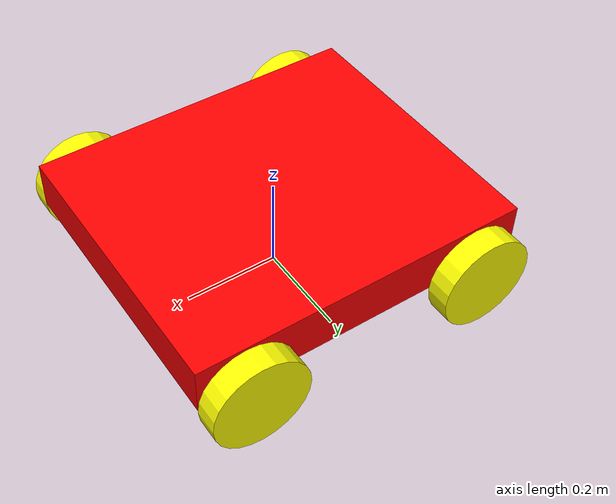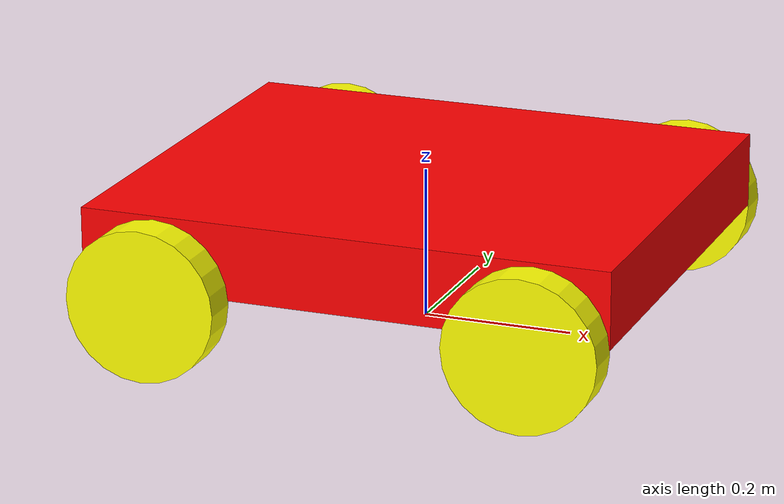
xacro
<?xml version="1.0"?>
<robot xmlns:xacro="http://www.ros.org/wiki/xacro">

    <xacro:include filename="inertial_macros.xacro"/>

    <material name="white">
        <color rgba="1 1 1 1" />
    </material>

    <material name="orange">
        <color rgba="1 0.3 0.1 1"/>
    </material>

    <material name="blue">
        <color rgba="0.2 0.2 1 1"/>
    </material>

    <material name="black">
        <color rgba="0 0 0 1"/>
    </material>

    <material name="red">
        <color rgba="1 0 0 1"/>
    </material>

    <!-- BASE LINK -->

    <link name="base_link">
    </link>

    <!-- BASE FOOTRPRINT LINK-->

    <joint name="base_footprint_joint" type="fixed">
        <parent link="base_link"/>
        <child link="base_footprint_link"/>
        <origin xyz="0.0 0.0 0.0"/>
    </joint>

    <link name="base_footprint_link">
    </link>

    <!-- CHASSIS LINK -->

    <joint name="chassis_joint" type="fixed">
        <parent link="base_link"/>
        <child link="chassis"/>
        <origin xyz="0.0 0.0 0.15"/>
    </joint>

    <link name="chassis">
        <visual>
            <origin xyz="0.0 0.0 0.0"/>
            <geometry>
                <box size="0.7 0.6 0.1"/>
            </geometry>
            <material name="red"/>
        </visual>
        <collision>
            <origin xyz="0.0 0.0 0.0"/>
            <geometry>
                <box size="0.7 0.6 0.1"/>
            </geometry>
        </collision>
        <xacro:inertial_box mass="5" x="0.7" y="0.6" z="0.1">
                <origin xyz="0.0 0.0 0.0" rpy="0.0 0.0 0.0"/>
        </xacro:inertial_box>
    </link>

       <!-- All Wheel links and joints -->
    <xacro:macro name="wheel" params="name x y z">
    <joint name="${name}_wheel_joint" type="continuous">
        <origin xyz="${x} ${y} ${z}" rpy="-${pi/2} 0.0 0.0"/>
        <parent link="chassis"/>
        <child link="${name}_wheel"/>
        <axis xyz="0.0 0.0 1"/>
    </joint>

        <link name="${name}_wheel">
            <visual name="">
                <origin xyz="0.0 0.0 0.0" rpy="0.0 0.0 0.0"/>
                <geometry>
                    <cylinder radius="0.1" length="0.05"/>
                </geometry>
                <material name="white">
                    <color rgba="1.0 1.0 0.0 1.0"/>
                </material>
            </visual>
            <collision>
                <origin xyz="0.0 0.0 0.0" rpy="0.0 0.0 0.0"/>
                <geometry>
                    <sphere radius="0.1" />
                </geometry>
            </collision>
            <xacro:inertial_cylinder mass="0.75" length="0.05" radius="0.1">
                <origin xyz="0.0 0.0 0.0" rpy="0.0 0.0 0.0"/>
            </xacro:inertial_cylinder>
        </link>
            <transmission name="${name}_trans">
        <type>transmission_interface/SimpleTransmission</type>
        <joint name="${name}_wheel_joint">
            <hardwareInterface>VelocityJointInterface</hardwareInterface>
        </joint>
        <actuator name="${name}_motor">
            <hardwareInterface>VelocityJointInterface</hardwareInterface>
            <mechanicalReduction>1</mechanicalReduction>
        </actuator>
    </transmission>
    </xacro:macro>

    <!-- Wheel Creating using macros -->
    <xacro:wheel name="front_left"  x="0.250" y ="0.325" z="-0.055"/>
    <xacro:wheel name="rear_left" x="-0.250" y ="0.325" z="-0.055"/>
    <xacro:wheel name="front_right"  x="0.250" y ="-0.325" z="-0.055"/>
    <xacro:wheel name="rear_right"   x="-0.250" y ="-0.325" z="-0.055"/>

</robot>
